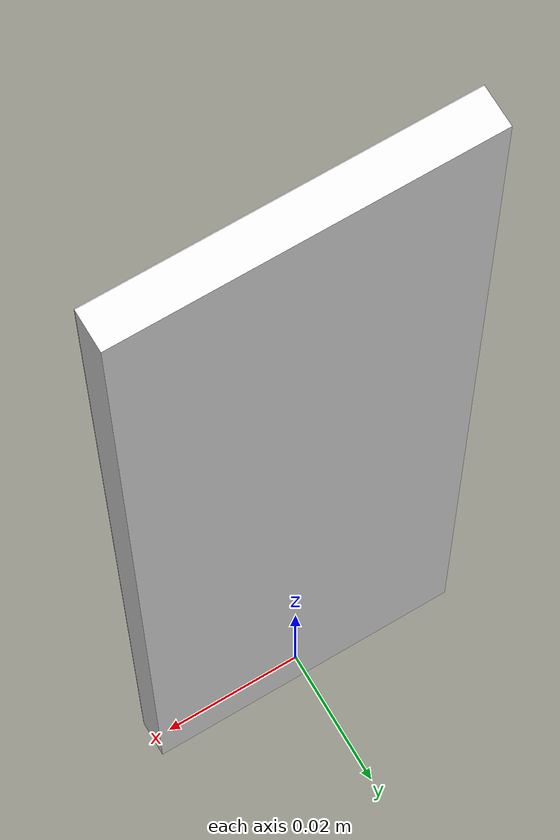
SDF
<?xml version="1.0"?>
<sdf version="1.7">
  <model name="person_standee_template">
    <static>true</static>
    <link name="standee">
      <visual name="standee_board">
        <pose>0 0 0.075 0 0 0</pose>
        <geometry><box><size>0.045 0.005 0.15</size></box></geometry>
        <material><ambient>0.82 0.82 0.82 1</ambient><diffuse>0.92 0.92 0.92 1</diffuse></material>
      </visual>
      <!-- The supplied person image is intentionally on the front face only. -->
      <visual name="person_image_front">
        <pose>0 -0.00255 0.075 0 0 0</pose>
        <geometry><box><size>0.045 0.0001 0.15</size></box></geometry>
        <material>
          <script>
            <uri>file://materials/scripts</uri>
            <uri>file://materials/textures</uri>
            <name>PersonStandee/Person01</name>
          </script>
        </material>
      </visual>
      <collision name="collision">
        <pose>0 0 0.075 0 0 0</pose>
        <geometry><box><size>0.045 0.005 0.15</size></box></geometry>
      </collision>
    </link>
  </model>
</sdf>
